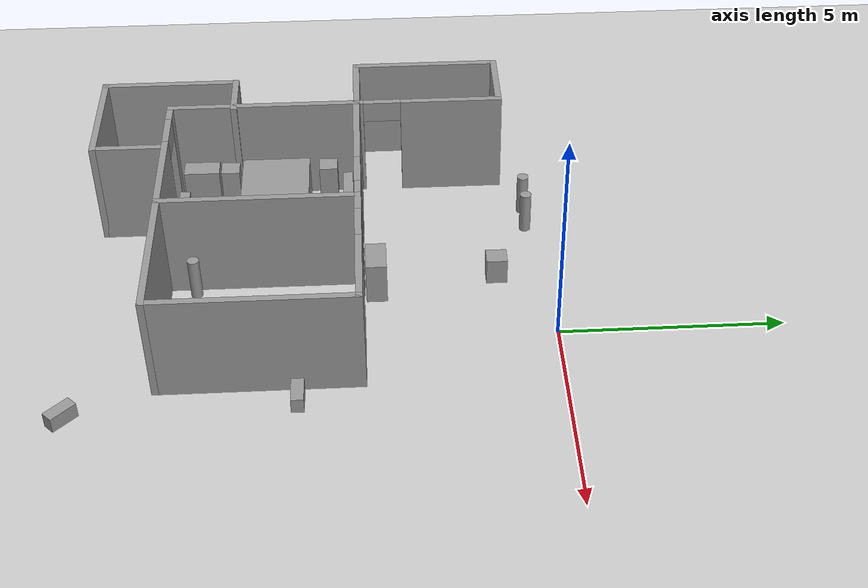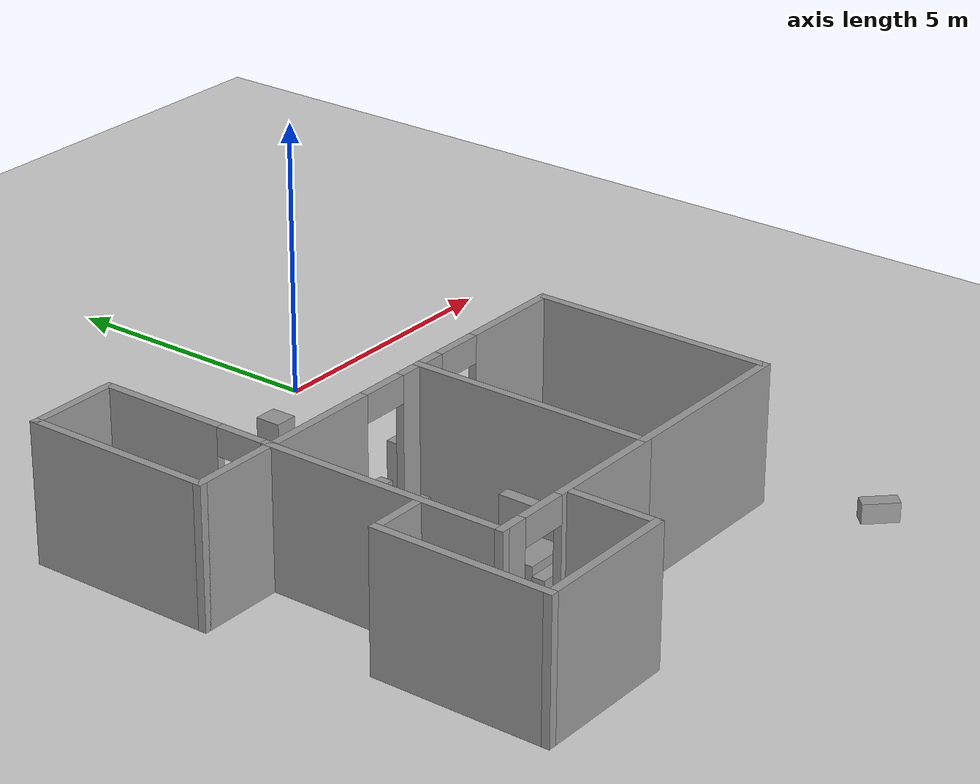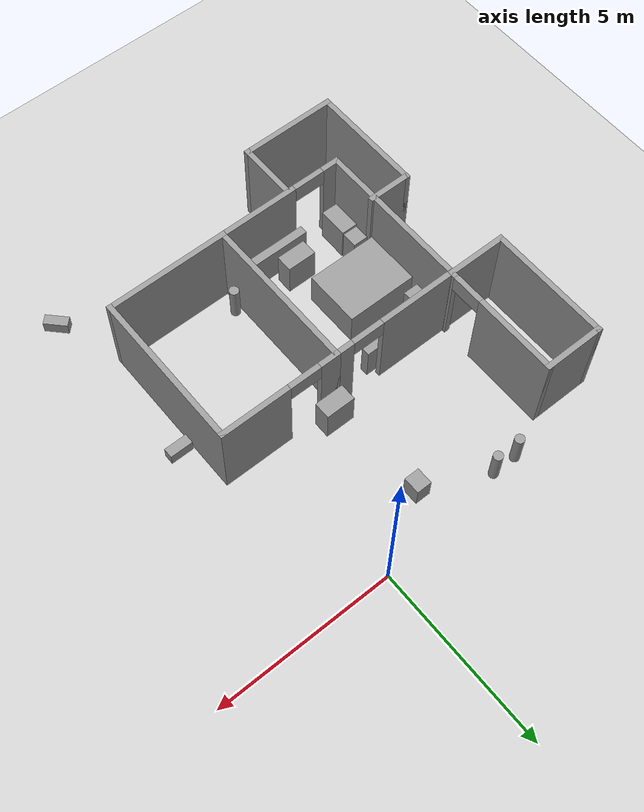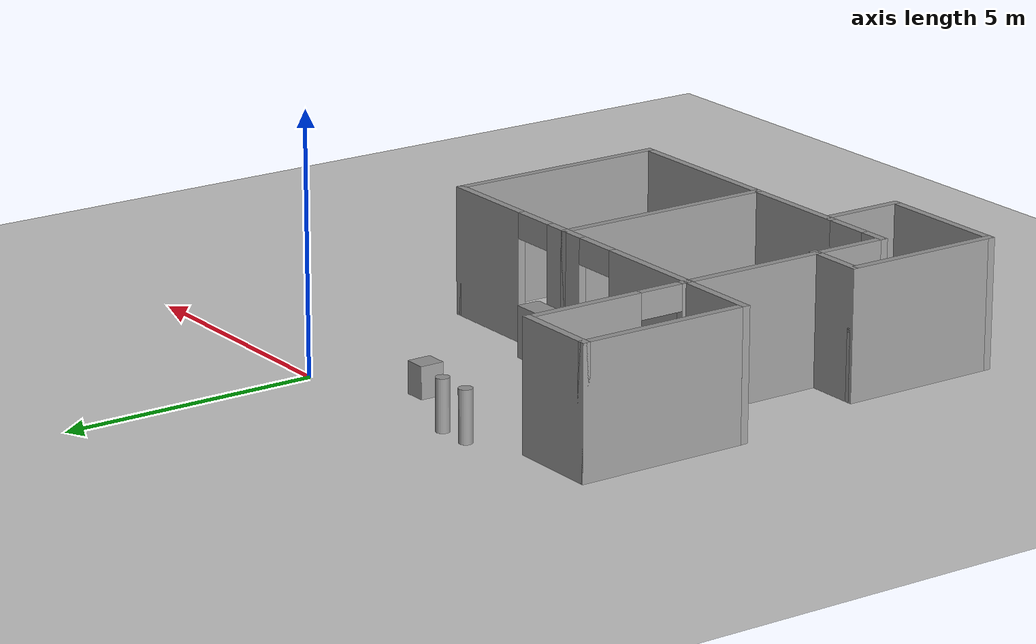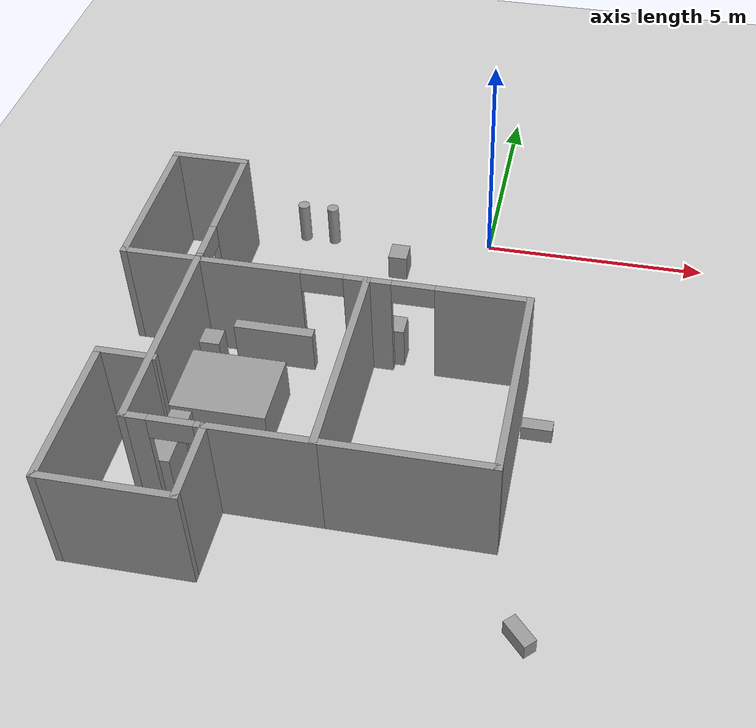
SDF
<sdf version="1.9">
 <world name="default">
  <model name="ground_plane">
   <static>true</static>
   <link name="link">
    <collision name="collision">
     <geometry><plane><normal>0 0 1</normal><size>100 100</size></plane></geometry>
     <surface><friction><ode><mu>100</mu><mu2>50</mu2></ode></friction></surface>
    </collision>
    <visual name="visual">
     <cast_shadows>false</cast_shadows>
     <geometry><plane><normal>0 0 1</normal><size>100 100</size></plane></geometry>
     <material>
      <script><uri>file://media/materials/scripts/gazebo.material</uri><name>Gazebo/Grey</name></script>
     </material>
    </visual>
   </link>
  </model>
  <model name="cma_varanda1">
   <pose>-6.3251799999999996 -2.5931299999999999 0 0 0 0</pose>
   <link name="Wall_0">
    <pose>0.80000000000000004 0 0 0 0 -1.5708</pose>
    <visual name="Wall_0_Visual_0">
     <pose>-0.55249999999999999 0 1.25 0 0 0</pose>
     <geometry><box><size>2.395 0.14999999999999999 2.5</size></box></geometry>
     <material>
      <script><uri>file://media/materials/scripts/gazebo.material</uri><name>Gazebo/Grey</name></script>
      <ambient>1 1 1 1</ambient>
     </material>
    </visual>
    <collision name="Wall_0_Collision_0">
     <geometry><box><size>2.395 0.14999999999999999 2.5</size></box></geometry>
     <pose>-0.55249999999999999 0 1.25 0 0 0</pose>
    </collision>
    <visual name="Wall_0_Visual_1">
     <pose>1.6375 0 1.25 0 0 0</pose>
     <geometry><box><size>0.22500000000000001 0.14999999999999999 2.5</size></box></geometry>
     <material>
      <script><uri>file://media/materials/scripts/gazebo.material</uri><name>Gazebo/Grey</name></script>
      <ambient>1 1 1 1</ambient>
     </material>
    </visual>
    <collision name="Wall_0_Collision_1">
     <geometry><box><size>0.22500000000000001 0.14999999999999999 2.5</size></box></geometry>
     <pose>1.6375 0 1.25 0 0 0</pose>
    </collision>
    <visual name="Wall_0_Visual_2">
     <pose>1.085 0 2.25 0 0 0</pose>
     <geometry><box><size>0.88 0.14999999999999999 0.5</size></box></geometry>
     <material>
      <script><uri>file://media/materials/scripts/gazebo.material</uri><name>Gazebo/Grey</name></script>
      <ambient>1 1 1 1</ambient>
     </material>
    </visual>
    <collision name="Wall_0_Collision_2">
     <geometry><box><size>0.88 0.14999999999999999 0.5</size></box></geometry>
     <pose>1.085 0 2.25 0 0 0</pose>
    </collision>
   </link>
   <link name="Wall_1">
    <collision name="Wall_1_Collision">
     <geometry><box><size>1.75 0.14999999999999999 2.5</size></box></geometry>
     <pose>0 0 1.25 0 0 0</pose>
    </collision>
    <visual name="Wall_1_Visual">
     <pose>0 0 1.25 0 0 0</pose>
     <geometry><box><size>1.75 0.14999999999999999 2.5</size></box></geometry>
     <material>
      <script><uri>file://media/materials/scripts/gazebo.material</uri><name>Gazebo/Grey</name></script>
      <ambient>1 1 1 1</ambient>
     </material>
    </visual>
    <pose>0 -1.675 0 0 0 3.1415899999999999</pose>
   </link>
   <link name="Wall_2">
    <collision name="Wall_2_Collision">
     <geometry><box><size>3.5 0.14999999999999999 2.5</size></box></geometry>
     <pose>0 0 1.25 0 0 0</pose>
    </collision>
    <visual name="Wall_2_Visual">
     <pose>0 0 1.25 0 0 0</pose>
     <geometry><box><size>3.5 0.14999999999999999 2.5</size></box></geometry>
     <material>
      <script><uri>file://media/materials/scripts/gazebo.material</uri><name>Gazebo/Grey</name></script>
      <ambient>1 1 1 1</ambient>
     </material>
    </visual>
    <pose>-0.80000000000000004 0 0 0 0 1.5708</pose>
   </link>
   <link name="Wall_3">
    <collision name="Wall_3_Collision">
     <geometry><box><size>1.75 0.14999999999999999 2.5</size></box></geometry>
     <pose>0 0 1.25 0 0 0</pose>
    </collision>
    <visual name="Wall_3_Visual">
     <pose>0 0 1.25 0 0 0</pose>
     <geometry><box><size>1.75 0.14999999999999999 2.5</size></box></geometry>
     <material>
      <script><uri>file://media/materials/scripts/gazebo.material</uri><name>Gazebo/Grey</name></script>
      <ambient>1 1 1 1</ambient>
     </material>
    </visual>
    <pose>0 1.675 0 0 0 0</pose>
   </link>
   <static>true</static>
  </model>
  <model name="cma_quartos">
   <pose>-2.58169 -7.2645600000000004 0 0 0 0</pose>
   <link name="Wall_0">
    <collision name="Wall_0_Collision">
     <geometry><box><size>4.5 0.14999999999999999 2.5</size></box></geometry>
     <pose>0 0 1.25 0 0 0</pose>
    </collision>
    <visual name="Wall_0_Visual">
     <pose>0 0 1.25 0 0 0</pose>
     <geometry><box><size>4.5 0.14999999999999999 2.5</size></box></geometry>
     <material>
      <script><uri>file://media/materials/scripts/gazebo.material</uri><name>Gazebo/Grey</name></script>
      <ambient>1 1 1 1</ambient>
     </material>
    </visual>
    <pose>0.64500000000000002 0.81000000000000005 0 0 0 -1.5708</pose>
   </link>
   <link name="Wall_1">
    <pose>-1.155 -1.365 0 0 0 3.1415899999999999</pose>
    <visual name="Wall_1_Visual_0">
     <pose>-0.72250000000000003 0 1.25 0 0 0</pose>
     <geometry><box><size>2.3050000000000002 0.14999999999999999 2.5</size></box></geometry>
     <material>
      <script><uri>file://media/materials/scripts/gazebo.material</uri><name>Gazebo/Grey</name></script>
      <ambient>1 1 1 1</ambient>
     </material>
    </visual>
    <collision name="Wall_1_Collision_0">
     <geometry><box><size>2.3050000000000002 0.14999999999999999 2.5</size></box></geometry>
     <pose>-0.72250000000000003 0 1.25 0 0 0</pose>
    </collision>
    <visual name="Wall_1_Visual_1">
     <pose>1.6025 0 1.25 0 0 0</pose>
     <geometry><box><size>0.54500000000000004 0.14999999999999999 2.5</size></box></geometry>
     <material>
      <script><uri>file://media/materials/scripts/gazebo.material</uri><name>Gazebo/Grey</name></script>
      <ambient>1 1 1 1</ambient>
     </material>
    </visual>
    <collision name="Wall_1_Collision_1">
     <geometry><box><size>0.54500000000000004 0.14999999999999999 2.5</size></box></geometry>
     <pose>1.6025 0 1.25 0 0 0</pose>
    </collision>
    <visual name="Wall_1_Visual_2">
     <pose>0.88 0 2.25 0 0 0</pose>
     <geometry><box><size>0.90000000000000002 0.14999999999999999 0.5</size></box></geometry>
     <material>
      <script><uri>file://media/materials/scripts/gazebo.material</uri><name>Gazebo/Grey</name></script>
      <ambient>1 1 1 1</ambient>
     </material>
    </visual>
    <collision name="Wall_1_Collision_2">
     <geometry><box><size>0.90000000000000002 0.14999999999999999 0.5</size></box></geometry>
     <pose>0.88 0 2.25 0 0 0</pose>
    </collision>
   </link>
   <link name="Wall_10">
    <collision name="Wall_10_Collision">
     <geometry><box><size>1.75 0.14999999999999999 2.5</size></box></geometry>
     <pose>0 0 1.25 0 0 0</pose>
    </collision>
    <visual name="Wall_10_Visual">
     <pose>0 0 1.25 0 0 0</pose>
     <geometry><box><size>1.75 0.14999999999999999 2.5</size></box></geometry>
     <material>
      <script><uri>file://media/materials/scripts/gazebo.material</uri><name>Gazebo/Grey</name></script>
      <ambient>1 1 1 1</ambient>
     </material>
    </visual>
    <pose>-1.395 -2.1850000000000001 0 0 0 -1.5708</pose>
   </link>
   <link name="Wall_11">
    <collision name="Wall_11_Collision">
     <geometry><box><size>2.75 0.14999999999999999 2.5</size></box></geometry>
     <pose>0 0 1.25 0 0 0</pose>
    </collision>
    <visual name="Wall_11_Visual">
     <pose>0 0 1.25 0 0 0</pose>
     <geometry><box><size>2.75 0.14999999999999999 2.5</size></box></geometry>
     <material>
      <script><uri>file://media/materials/scripts/gazebo.material</uri><name>Gazebo/Grey</name></script>
      <ambient>1 1 1 1</ambient>
     </material>
    </visual>
    <pose>-2.6949999999999998 -2.9849999999999999 0 0 0 3.1415899999999999</pose>
   </link>
   <link name="Wall_12">
    <collision name="Wall_12_Collision">
     <geometry><box><size>3.25 0.14999999999999999 2.5</size></box></geometry>
     <pose>0 0 1.25 0 0 0</pose>
    </collision>
    <visual name="Wall_12_Visual">
     <pose>0 0 1.25 0 0 0</pose>
     <geometry><box><size>3.25 0.14999999999999999 2.5</size></box></geometry>
     <material>
      <script><uri>file://media/materials/scripts/gazebo.material</uri><name>Gazebo/Grey</name></script>
      <ambient>1 1 1 1</ambient>
     </material>
    </visual>
    <pose>-3.9950000000000001 -1.4350000000000001 0 0 0 1.5708</pose>
   </link>
   <link name="Wall_13">
    <collision name="Wall_13_Collision">
     <geometry><box><size>1.25 0.14999999999999999 2.5</size></box></geometry>
     <pose>0 0 1.25 0 0 0</pose>
    </collision>
    <visual name="Wall_13_Visual">
     <pose>0 0 1.25 0 0 0</pose>
     <geometry><box><size>1.25 0.14999999999999999 2.5</size></box></geometry>
     <material>
      <script><uri>file://media/materials/scripts/gazebo.material</uri><name>Gazebo/Grey</name></script>
      <ambient>1 1 1 1</ambient>
     </material>
    </visual>
    <pose>-3.4449999999999998 0.115 0 0 0 0</pose>
   </link>
   <link name="Wall_2">
    <collision name="Wall_2_Collision">
     <geometry><box><size>4.5 0.14999999999999999 2.5</size></box></geometry>
     <pose>0 0 1.25 0 0 0</pose>
    </collision>
    <visual name="Wall_2_Visual">
     <pose>0 0 1.25 0 0 0</pose>
     <geometry><box><size>4.5 0.14999999999999999 2.5</size></box></geometry>
     <material>
      <script><uri>file://media/materials/scripts/gazebo.material</uri><name>Gazebo/Grey</name></script>
      <ambient>1 1 1 1</ambient>
     </material>
    </visual>
    <pose>-2.9550000000000001 0.81000000000000005 0 0 0 1.5708</pose>
   </link>
   <link name="Wall_3">
    <pose>-1.155 2.9849999999999999 0 0 0 0</pose>
    <visual name="Wall_3_Visual_0">
     <pose>-0.73250000000000004 0 1.25 0 0 0</pose>
     <geometry><box><size>2.2850000000000001 0.14999999999999999 2.5</size></box></geometry>
     <material>
      <script><uri>file://media/materials/scripts/gazebo.material</uri><name>Gazebo/Grey</name></script>
      <ambient>1 1 1 1</ambient>
     </material>
    </visual>
    <collision name="Wall_3_Collision_0">
     <geometry><box><size>2.2850000000000001 0.14999999999999999 2.5</size></box></geometry>
     <pose>-0.73250000000000004 0 1.25 0 0 0</pose>
    </collision>
    <visual name="Wall_3_Visual_1">
     <pose>1.5925 0 1.25 0 0 0</pose>
     <geometry><box><size>0.56499999999999995 0.14999999999999999 2.5</size></box></geometry>
     <material>
      <script><uri>file://media/materials/scripts/gazebo.material</uri><name>Gazebo/Grey</name></script>
      <ambient>1 1 1 1</ambient>
     </material>
    </visual>
    <collision name="Wall_3_Collision_1">
     <geometry><box><size>0.56499999999999995 0.14999999999999999 2.5</size></box></geometry>
     <pose>1.5925 0 1.25 0 0 0</pose>
    </collision>
    <visual name="Wall_3_Visual_2">
     <pose>0.85999999999999999 0 2.25 0 0 0</pose>
     <geometry><box><size>0.90000000000000002 0.14999999999999999 0.5</size></box></geometry>
     <material>
      <script><uri>file://media/materials/scripts/gazebo.material</uri><name>Gazebo/Grey</name></script>
      <ambient>1 1 1 1</ambient>
     </material>
    </visual>
    <collision name="Wall_3_Collision_2">
     <geometry><box><size>0.90000000000000002 0.14999999999999999 0.5</size></box></geometry>
     <pose>0.85999999999999999 0 2.25 0 0 0</pose>
    </collision>
   </link>
   <link name="Wall_6">
    <pose>2.3199999999999998 2.9849999999999999 0 0 0 0</pose>
    <visual name="Wall_6_Visual_0">
     <pose>-1.4575 0 1.25 0 0 0</pose>
     <geometry><box><size>0.58499999999999996 0.14999999999999999 2.5</size></box></geometry>
     <material>
      <script><uri>file://media/materials/scripts/gazebo.material</uri><name>Gazebo/Grey</name></script>
      <ambient>1 1 1 1</ambient>
     </material>
    </visual>
    <collision name="Wall_6_Collision_0">
     <geometry><box><size>0.58499999999999996 0.14999999999999999 2.5</size></box></geometry>
     <pose>-1.4575 0 1.25 0 0 0</pose>
    </collision>
    <visual name="Wall_6_Visual_1">
     <pose>0.74250000000000005 0 1.25 0 0 0</pose>
     <geometry><box><size>2.0150000000000001 0.14999999999999999 2.5</size></box></geometry>
     <material>
      <script><uri>file://media/materials/scripts/gazebo.material</uri><name>Gazebo/Grey</name></script>
      <ambient>1 1 1 1</ambient>
     </material>
    </visual>
    <collision name="Wall_6_Collision_1">
     <geometry><box><size>2.0150000000000001 0.14999999999999999 2.5</size></box></geometry>
     <pose>0.74250000000000005 0 1.25 0 0 0</pose>
    </collision>
    <visual name="Wall_6_Visual_2">
     <pose>-0.71499999999999997 0 2.25 0 0 0</pose>
     <geometry><box><size>0.90000000000000002 0.14999999999999999 0.5</size></box></geometry>
     <material>
      <script><uri>file://media/materials/scripts/gazebo.material</uri><name>Gazebo/Grey</name></script>
      <ambient>1 1 1 1</ambient>
     </material>
    </visual>
    <collision name="Wall_6_Collision_2">
     <geometry><box><size>0.90000000000000002 0.14999999999999999 0.5</size></box></geometry>
     <pose>-0.71499999999999997 0 2.25 0 0 0</pose>
    </collision>
   </link>
   <link name="Wall_7">
    <collision name="Wall_7_Collision">
     <geometry><box><size>4.5 0.14999999999999999 2.5</size></box></geometry>
     <pose>0 0 1.25 0 0 0</pose>
    </collision>
    <visual name="Wall_7_Visual">
     <pose>0 0 1.25 0 0 0</pose>
     <geometry><box><size>4.5 0.14999999999999999 2.5</size></box></geometry>
     <material>
      <script><uri>file://media/materials/scripts/gazebo.material</uri><name>Gazebo/Grey</name></script>
      <ambient>1 1 1 1</ambient>
     </material>
    </visual>
    <pose>3.9950000000000001 0.81000000000000005 0 0 0 -1.5708</pose>
   </link>
   <link name="Wall_8">
    <collision name="Wall_8_Collision">
     <geometry><box><size>3.5 0.14999999999999999 2.5</size></box></geometry>
     <pose>0 0 1.25 0 0 0</pose>
    </collision>
    <visual name="Wall_8_Visual">
     <pose>0 0 1.25 0 0 0</pose>
     <geometry><box><size>3.5 0.14999999999999999 2.5</size></box></geometry>
     <material>
      <script><uri>file://media/materials/scripts/gazebo.material</uri><name>Gazebo/Grey</name></script>
      <ambient>1 1 1 1</ambient>
     </material>
    </visual>
    <pose>2.3199999999999998 -1.365 0 0 0 3.1415899999999999</pose>
   </link>
   <static>true</static>
  </model>
  <model name="cma_bau_s">
   <link name="link_1">
    <pose>0.109594 0.27229300000000001 0 0 0 0</pose>
    <inertial>
     <mass>0.12547900000000001</mass>
     <inertia>
      <ixx>0.0064194300000000003</ixx>
      <ixy>0</ixy>
      <ixz>0</ixz>
      <iyy>0.0059753999999999996</iyy>
      <iyz>0</iyz>
      <izz>0.0042208499999999999</izz>
     </inertia>
    </inertial>
    <visual name="visual">
     <geometry><box><size>0.42496400000000001 0.47228300000000001 0.62511799999999995</size></box></geometry>
     <material>
      <lighting>true</lighting>
      <script><uri>file://media/materials/scripts/gazebo.material</uri><name>Gazebo/Grey</name></script>
      <ambient>0.300000012 0.300000012 0.300000012 1</ambient>
      <diffuse>0.699999988 0.699999988 0.699999988 1</diffuse>
      <specular>0.00999999978 0.00999999978 0.00999999978 1</specular>
      <emissive>0 0 0 1</emissive>
     </material>
    </visual>
    <collision name="collision">
     <geometry><box><size>0.42496400000000001 0.47228300000000001 0.62511799999999995</size></box></geometry>
     <surface>
      <friction>
       <ode><mu>1</mu><mu2>1</mu2><fdir1>0 0 0</fdir1><slip1>0</slip1><slip2>0</slip2></ode>
       <torsional>
        <coefficient>1</coefficient>
        <patch_radius>0</patch_radius>
        <surface_radius>0</surface_radius>
        <use_patch_radius>true</use_patch_radius>
        <ode><slip>0</slip></ode>
       </torsional>
      </friction>
      <bounce><restitution_coefficient>0</restitution_coefficient><threshold>1000000</threshold></bounce>
      <contact>
       <collide_without_contact>false</collide_without_contact>
       <collide_without_contact_bitmask>1</collide_without_contact_bitmask>
       <collide_bitmask>1</collide_bitmask>
       <ode>
        <soft_cfm>0</soft_cfm>
        <soft_erp>0.20000000000000001</soft_erp>
        <kp>10000000000000</kp>
        <kd>1</kd>
        <max_vel>0.01</max_vel>
        <min_depth>0</min_depth>
       </ode>
       <bullet>
        <split_impulse>true</split_impulse>
        <split_impulse_penetration_threshold>-0.01</split_impulse_penetration_threshold>
        <soft_cfm>0</soft_cfm>
        <soft_erp>0.20000000000000001</soft_erp>
        <kp>10000000000000</kp>
        <kd>1</kd>
       </bullet>
      </contact>
     </surface>
    </collision>
   </link>
   <static>false</static>
   <pose>-2.0428799999999998 -1.4857199999999999 0.31256 -3.999999999999999e-06 1.2000000000000002e-05 0.00026099999999999995</pose>
  </model>
  <model name="cma_armario_s">
   <link name="link_1">
    <pose>-1.9999999999999999e-06 -3.0000000000000001e-06 0 0 0 0</pose>
    <inertial>
     <mass>0.39015899999999998</mass>
     <inertia>
      <ixx>0.039647000000000002</ixx>
      <ixy>0</ixy>
      <ixz>0</ixz>
      <iyy>0.055070800000000003</iyy>
      <iyz>0</iyz>
      <izz>0.029691200000000001</izz>
     </inertia>
    </inertial>
    <visual name="visual">
     <geometry><box><size>0.83294199999999996 0.46839700000000001 1</size></box></geometry>
     <material>
      <lighting>true</lighting>
      <script><uri>file://media/materials/scripts/gazebo.material</uri><name>Gazebo/Grey</name></script>
      <ambient>0.300000012 0.300000012 0.300000012 1</ambient>
      <diffuse>0.699999988 0.699999988 0.699999988 1</diffuse>
      <specular>0.00999999978 0.00999999978 0.00999999978 1</specular>
      <emissive>0 0 0 1</emissive>
     </material>
    </visual>
    <collision name="collision">
     <geometry><box><size>0.83294199999999996 0.46839700000000001 1</size></box></geometry>
     <surface>
      <friction>
       <ode><mu>1</mu><mu2>1</mu2><fdir1>0 0 0</fdir1><slip1>0</slip1><slip2>0</slip2></ode>
       <torsional>
        <coefficient>1</coefficient>
        <patch_radius>0</patch_radius>
        <surface_radius>0</surface_radius>
        <use_patch_radius>true</use_patch_radius>
        <ode><slip>0</slip></ode>
       </torsional>
      </friction>
      <bounce><restitution_coefficient>0</restitution_coefficient><threshold>1000000</threshold></bounce>
      <contact>
       <collide_without_contact>false</collide_without_contact>
       <collide_without_contact_bitmask>1</collide_without_contact_bitmask>
       <collide_bitmask>1</collide_bitmask>
       <ode>
        <soft_cfm>0</soft_cfm>
        <soft_erp>0.20000000000000001</soft_erp>
        <kp>10000000000000</kp>
        <kd>1</kd>
        <max_vel>0.01</max_vel>
        <min_depth>0</min_depth>
       </ode>
       <bullet>
        <split_impulse>true</split_impulse>
        <split_impulse_penetration_threshold>-0.01</split_impulse_penetration_threshold>
        <soft_cfm>0</soft_cfm>
        <soft_erp>0.20000000000000001</soft_erp>
        <kp>10000000000000</kp>
        <kd>1</kd>
       </bullet>
      </contact>
     </surface>
    </collision>
   </link>
   <static>false</static>
   <pose>-1.6384399999999999 -3.9380099999999998 0.5 0 0 9.7999999999999997e-05</pose>
  </model>
  <model name="cma_cama_c">
   <link name="link_0">
    <pose>5.0000000000000004e-06 -3.9999999999999998e-06 0 0 0 0</pose>
    <inertial>
     <mass>3.1835800000000001</mass>
     <inertia>
      <ixx>0.93486199999999997</ixx>
      <ixy>0</ixy>
      <ixz>0</ixz>
      <iyy>1.3306899999999999</iyy>
      <iyz>0</iyz>
      <izz>1.7349600000000001</izz>
     </inertia>
    </inertial>
    <visual name="visual">
     <geometry><box><size>2.0039400000000001 1.58866 1</size></box></geometry>
     <material>
      <lighting>true</lighting>
      <script><uri>file://media/materials/scripts/gazebo.material</uri><name>Gazebo/Grey</name></script>
      <ambient>0.300000012 0.300000012 0.300000012 1</ambient>
      <diffuse>0.699999988 0.699999988 0.699999988 1</diffuse>
      <specular>0.00999999978 0.00999999978 0.00999999978 1</specular>
      <emissive>0 0 0 1</emissive>
     </material>
    </visual>
    <collision name="collision">
     <geometry><box><size>2.0039400000000001 1.58866 1</size></box></geometry>
     <surface>
      <friction>
       <ode><mu>1</mu><mu2>1</mu2><fdir1>0 0 0</fdir1><slip1>0</slip1><slip2>0</slip2></ode>
       <torsional>
        <coefficient>1</coefficient>
        <patch_radius>0</patch_radius>
        <surface_radius>0</surface_radius>
        <use_patch_radius>true</use_patch_radius>
        <ode><slip>0</slip></ode>
       </torsional>
      </friction>
      <bounce><restitution_coefficient>0</restitution_coefficient><threshold>1000000</threshold></bounce>
      <contact>
       <collide_without_contact>false</collide_without_contact>
       <collide_without_contact_bitmask>1</collide_without_contact_bitmask>
       <collide_bitmask>1</collide_bitmask>
       <ode>
        <soft_cfm>0</soft_cfm>
        <soft_erp>0.20000000000000001</soft_erp>
        <kp>10000000000000</kp>
        <kd>1</kd>
        <max_vel>0.01</max_vel>
        <min_depth>0</min_depth>
       </ode>
       <bullet>
        <split_impulse>true</split_impulse>
        <split_impulse_penetration_threshold>-0.01</split_impulse_penetration_threshold>
        <soft_cfm>0</soft_cfm>
        <soft_erp>0.20000000000000001</soft_erp>
        <kp>10000000000000</kp>
        <kd>1</kd>
       </bullet>
      </contact>
     </surface>
    </collision>
   </link>
   <static>false</static>
   <pose>-4.43933 -6.2481600000000004 0.5 0 0 0</pose>
  </model>
  <model name="cma_armario_0">
   <link name="link_0">
    <pose>1.3215699999999999 0.88517800000000002 0.5 0 0 0</pose>
    <inertial>
     <mass>0.40237600000000001</mass>
     <inertia>
      <ixx>0.0353686</ixx>
      <ixy>0</ixy>
      <ixz>0</ixz>
      <iyy>0.13261600000000001</iyy>
      <iyz>0</iyz>
      <izz>0.100922</izz>
     </inertia>
    </inertial>
    <visual name="visual">
     <geometry><box><size>1.7187699999999999 0.234069 1</size></box></geometry>
     <material>
      <lighting>true</lighting>
      <script><uri>file://media/materials/scripts/gazebo.material</uri><name>Gazebo/Grey</name></script>
      <ambient>0.300000012 0.300000012 0.300000012 1</ambient>
      <diffuse>0.699999988 0.699999988 0.699999988 1</diffuse>
      <specular>0.00999999978 0.00999999978 0.00999999978 1</specular>
      <emissive>0 0 0 1</emissive>
     </material>
    </visual>
    <collision name="collision">
     <geometry><box><size>1.7187699999999999 0.234069 1</size></box></geometry>
     <surface>
      <friction>
       <ode><mu>1</mu><mu2>1</mu2><fdir1>0 0 0</fdir1><slip1>0</slip1><slip2>0</slip2></ode>
       <torsional>
        <coefficient>1</coefficient>
        <patch_radius>0</patch_radius>
        <surface_radius>0</surface_radius>
        <use_patch_radius>true</use_patch_radius>
        <ode><slip>0</slip></ode>
       </torsional>
      </friction>
      <bounce><restitution_coefficient>0</restitution_coefficient><threshold>1000000</threshold></bounce>
      <contact>
       <collide_without_contact>false</collide_without_contact>
       <collide_without_contact_bitmask>1</collide_without_contact_bitmask>
       <collide_bitmask>1</collide_bitmask>
       <ode>
        <soft_cfm>0</soft_cfm>
        <soft_erp>0.20000000000000001</soft_erp>
        <kp>10000000000000</kp>
        <kd>1</kd>
        <max_vel>0.01</max_vel>
        <min_depth>0</min_depth>
       </ode>
       <bullet>
        <split_impulse>true</split_impulse>
        <split_impulse_penetration_threshold>-0.01</split_impulse_penetration_threshold>
        <soft_cfm>0</soft_cfm>
        <soft_erp>0.20000000000000001</soft_erp>
        <kp>10000000000000</kp>
        <kd>1</kd>
       </bullet>
      </contact>
     </surface>
    </collision>
   </link>
   <static>false</static>
   <pose>-5.2777700000000003 -5.4180099999999998 0 0 0 -0.0015620000000000002</pose>
  </model>
  <model name="cma_gaveteiro_pequeno_1">
   <link name="link_0">
    <pose>0.25617400000000001 1.2505500000000001 0.5 0 0 0</pose>
    <inertial>
     <mass>0.18718599999999999</mass>
     <inertia>
      <ixx>0.018509999999999999</ixx>
      <ixy>0</ixy>
      <ixz>0</ixz>
      <iyy>0.018527600000000002</iyy>
      <iyz>0</iyz>
      <izz>0.00583981</izz>
     </inertia>
    </inertial>
    <visual name="visual">
     <geometry><box><size>0.43331700000000001 0.432002 1</size></box></geometry>
     <material>
      <lighting>true</lighting>
      <script><uri>file://media/materials/scripts/gazebo.material</uri><name>Gazebo/Grey</name></script>
      <ambient>0.300000012 0.300000012 0.300000012 1</ambient>
      <diffuse>0.699999988 0.699999988 0.699999988 1</diffuse>
      <specular>0.00999999978 0.00999999978 0.00999999978 1</specular>
      <emissive>0 0 0 1</emissive>
     </material>
    </visual>
    <collision name="collision">
     <geometry><box><size>0.43331700000000001 0.432002 1</size></box></geometry>
     <surface>
      <friction>
       <ode><mu>1</mu><mu2>1</mu2><fdir1>0 0 0</fdir1><slip1>0</slip1><slip2>0</slip2></ode>
       <torsional>
        <coefficient>1</coefficient>
        <patch_radius>0</patch_radius>
        <surface_radius>0</surface_radius>
        <use_patch_radius>true</use_patch_radius>
        <ode><slip>0</slip></ode>
       </torsional>
      </friction>
      <bounce><restitution_coefficient>0</restitution_coefficient><threshold>1000000</threshold></bounce>
      <contact>
       <collide_without_contact>false</collide_without_contact>
       <collide_without_contact_bitmask>1</collide_without_contact_bitmask>
       <collide_bitmask>1</collide_bitmask>
       <ode>
        <soft_cfm>0</soft_cfm>
        <soft_erp>0.20000000000000001</soft_erp>
        <kp>10000000000000</kp>
        <kd>1</kd>
        <max_vel>0.01</max_vel>
        <min_depth>0</min_depth>
       </ode>
       <bullet>
        <split_impulse>true</split_impulse>
        <split_impulse_penetration_threshold>-0.01</split_impulse_penetration_threshold>
        <soft_cfm>0</soft_cfm>
        <soft_erp>0.20000000000000001</soft_erp>
        <kp>10000000000000</kp>
        <kd>1</kd>
       </bullet>
      </contact>
     </surface>
    </collision>
   </link>
   <static>false</static>
   <pose>-5.4309099999999999 -6.2550800000000004 -1.2e-05 8.0000000000000013e-06 0 1.8000000000000004e-05</pose>
  </model>
  <model name="cma_armario_s_0">
   <link name="link_1">
    <pose>-1.9999999999999999e-06 -3.0000000000000001e-06 0 0 0 0</pose>
    <inertial>
     <mass>0.39015899999999998</mass>
     <inertia>
      <ixx>0.039647000000000002</ixx>
      <ixy>0</ixy>
      <ixz>0</ixz>
      <iyy>0.055070800000000003</iyy>
      <iyz>0</iyz>
      <izz>0.029691200000000001</izz>
     </inertia>
    </inertial>
    <visual name="visual">
     <geometry><box><size>0.83294199999999996 0.46839700000000001 1</size></box></geometry>
     <material>
      <lighting>true</lighting>
      <script><uri>file://media/materials/scripts/gazebo.material</uri><name>Gazebo/Grey</name></script>
      <ambient>0.300000012 0.300000012 0.300000012 1</ambient>
      <diffuse>0.699999988 0.699999988 0.699999988 1</diffuse>
      <specular>0.00999999978 0.00999999978 0.00999999978 1</specular>
      <emissive>0 0 0 1</emissive>
     </material>
    </visual>
    <collision name="collision">
     <geometry><box><size>0.83294199999999996 0.46839700000000001 1</size></box></geometry>
     <surface>
      <friction>
       <ode><mu>1</mu><mu2>1</mu2><fdir1>0 0 0</fdir1><slip1>0</slip1><slip2>0</slip2></ode>
       <torsional>
        <coefficient>1</coefficient>
        <patch_radius>0</patch_radius>
        <surface_radius>0</surface_radius>
        <use_patch_radius>true</use_patch_radius>
        <ode><slip>0</slip></ode>
       </torsional>
      </friction>
      <bounce><restitution_coefficient>0</restitution_coefficient><threshold>1000000</threshold></bounce>
      <contact>
       <collide_without_contact>false</collide_without_contact>
       <collide_without_contact_bitmask>1</collide_without_contact_bitmask>
       <collide_bitmask>1</collide_bitmask>
       <ode>
        <soft_cfm>0</soft_cfm>
        <soft_erp>0.20000000000000001</soft_erp>
        <kp>10000000000000</kp>
        <kd>1</kd>
        <max_vel>0.01</max_vel>
        <min_depth>0</min_depth>
       </ode>
       <bullet>
        <split_impulse>true</split_impulse>
        <split_impulse_penetration_threshold>-0.01</split_impulse_penetration_threshold>
        <soft_cfm>0</soft_cfm>
        <soft_erp>0.20000000000000001</soft_erp>
        <kp>10000000000000</kp>
        <kd>1</kd>
       </bullet>
      </contact>
     </surface>
    </collision>
   </link>
   <static>false</static>
   <pose>-5.1684299999999999 -8.01553 0.5 0 0 -1.5749599999999997</pose>
  </model>
  <model name="cma_gaveteiro_pequeno_2">
   <link name="link_0">
    <pose>0.25617400000000001 1.2505500000000001 0.5 0 0 0</pose>
    <inertial>
     <mass>0.18718599999999999</mass>
     <inertia>
      <ixx>0.018509999999999999</ixx>
      <ixy>0</ixy>
      <ixz>0</ixz>
      <iyy>0.018527600000000002</iyy>
      <iyz>0</iyz>
      <izz>0.00583981</izz>
     </inertia>
    </inertial>
    <visual name="visual">
     <geometry><box><size>0.43331700000000001 0.432002 1</size></box></geometry>
     <material>
      <lighting>true</lighting>
      <script><uri>file://media/materials/scripts/gazebo.material</uri><name>Gazebo/Grey</name></script>
      <ambient>0.300000012 0.300000012 0.300000012 1</ambient>
      <diffuse>0.699999988 0.699999988 0.699999988 1</diffuse>
      <specular>0.00999999978 0.00999999978 0.00999999978 1</specular>
      <emissive>0 0 0 1</emissive>
     </material>
    </visual>
    <collision name="collision">
     <geometry><box><size>0.43331700000000001 0.432002 1</size></box></geometry>
     <surface>
      <friction>
       <ode><mu>1</mu><mu2>1</mu2><fdir1>0 0 0</fdir1><slip1>0</slip1><slip2>0</slip2></ode>
       <torsional>
        <coefficient>1</coefficient>
        <patch_radius>0</patch_radius>
        <surface_radius>0</surface_radius>
        <use_patch_radius>true</use_patch_radius>
        <ode><slip>0</slip></ode>
       </torsional>
      </friction>
      <bounce><restitution_coefficient>0</restitution_coefficient><threshold>1000000</threshold></bounce>
      <contact>
       <collide_without_contact>false</collide_without_contact>
       <collide_without_contact_bitmask>1</collide_without_contact_bitmask>
       <collide_bitmask>1</collide_bitmask>
       <ode>
        <soft_cfm>0</soft_cfm>
        <soft_erp>0.20000000000000001</soft_erp>
        <kp>10000000000000</kp>
        <kd>1</kd>
        <max_vel>0.01</max_vel>
        <min_depth>0</min_depth>
       </ode>
       <bullet>
        <split_impulse>true</split_impulse>
        <split_impulse_penetration_threshold>-0.01</split_impulse_penetration_threshold>
        <soft_cfm>0</soft_cfm>
        <soft_erp>0.20000000000000001</soft_erp>
        <kp>10000000000000</kp>
        <kd>1</kd>
       </bullet>
      </contact>
     </surface>
    </collision>
   </link>
   <static>false</static>
   <pose>-5.3916300000000001 -8.5855200000000007 3.0000000000000001e-06 2.5849394142915424e-26 6.999999999999999e-06 -3.9000000000000006e-05</pose>
  </model>
  <model name="cma_armario_s_1">
   <link name="link_1">
    <pose>-1.9999999999999999e-06 -3.0000000000000001e-06 0 0 0 0</pose>
    <inertial>
     <mass>0.39015899999999998</mass>
     <inertia>
      <ixx>0.039647000000000002</ixx>
      <ixy>0</ixy>
      <ixz>0</ixz>
      <iyy>0.055070800000000003</iyy>
      <iyz>0</iyz>
      <izz>0.029691200000000001</izz>
     </inertia>
    </inertial>
    <visual name="visual">
     <geometry><box><size>0.83294199999999996 0.46839700000000001 1</size></box></geometry>
     <material>
      <lighting>true</lighting>
      <script><uri>file://media/materials/scripts/gazebo.material</uri><name>Gazebo/Grey</name></script>
      <ambient>0.300000012 0.300000012 0.300000012 1</ambient>
      <diffuse>0.699999988 0.699999988 0.699999988 1</diffuse>
      <specular>0.00999999978 0.00999999978 0.00999999978 1</specular>
      <emissive>0 0 0 1</emissive>
     </material>
    </visual>
    <collision name="collision">
     <geometry><box><size>0.83294199999999996 0.46839700000000001 1</size></box></geometry>
     <surface>
      <friction>
       <ode><mu>1</mu><mu2>1</mu2><fdir1>0 0 0</fdir1><slip1>0</slip1><slip2>0</slip2></ode>
       <torsional>
        <coefficient>1</coefficient>
        <patch_radius>0</patch_radius>
        <surface_radius>0</surface_radius>
        <use_patch_radius>true</use_patch_radius>
        <ode><slip>0</slip></ode>
       </torsional>
      </friction>
      <bounce><restitution_coefficient>0</restitution_coefficient><threshold>1000000</threshold></bounce>
      <contact>
       <collide_without_contact>false</collide_without_contact>
       <collide_without_contact_bitmask>1</collide_without_contact_bitmask>
       <collide_bitmask>1</collide_bitmask>
       <ode>
        <soft_cfm>0</soft_cfm>
        <soft_erp>0.20000000000000001</soft_erp>
        <kp>10000000000000</kp>
        <kd>1</kd>
        <max_vel>0.01</max_vel>
        <min_depth>0</min_depth>
       </ode>
       <bullet>
        <split_impulse>true</split_impulse>
        <split_impulse_penetration_threshold>-0.01</split_impulse_penetration_threshold>
        <soft_cfm>0</soft_cfm>
        <soft_erp>0.20000000000000001</soft_erp>
        <kp>10000000000000</kp>
        <kd>1</kd>
       </bullet>
      </contact>
     </surface>
    </collision>
   </link>
   <static>false</static>
   <pose>-3.5794899999999998 -7.8237399999999999 0.5 0 0 0.00045200000000000004</pose>
  </model>
  <model name="cma_armario_1">
   <link name="link_0">
    <pose>1.3215699999999999 0.88517800000000002 0.5 0 0 0</pose>
    <inertial>
     <mass>0.40237600000000001</mass>
     <inertia>
      <ixx>0.0353686</ixx>
      <ixy>0</ixy>
      <ixz>0</ixz>
      <iyy>0.13261600000000001</iyy>
      <iyz>0</iyz>
      <izz>0.100922</izz>
     </inertia>
    </inertial>
    <visual name="visual">
     <geometry><box><size>1.7187699999999999 0.234069 1</size></box></geometry>
     <material>
      <lighting>true</lighting>
      <script><uri>file://media/materials/scripts/gazebo.material</uri><name>Gazebo/Grey</name></script>
      <ambient>0.300000012 0.300000012 0.300000012 1</ambient>
      <diffuse>0.699999988 0.699999988 0.699999988 1</diffuse>
      <specular>0.00999999978 0.00999999978 0.00999999978 1</specular>
      <emissive>0 0 0 1</emissive>
     </material>
    </visual>
    <collision name="collision">
     <geometry><box><size>1.7187699999999999 0.234069 1</size></box></geometry>
     <surface>
      <friction>
       <ode><mu>1</mu><mu2>1</mu2><fdir1>0 0 0</fdir1><slip1>0</slip1><slip2>0</slip2></ode>
       <torsional>
        <coefficient>1</coefficient>
        <patch_radius>0</patch_radius>
        <surface_radius>0</surface_radius>
        <use_patch_radius>true</use_patch_radius>
        <ode><slip>0</slip></ode>
       </torsional>
      </friction>
      <bounce><restitution_coefficient>0</restitution_coefficient><threshold>1000000</threshold></bounce>
      <contact>
       <collide_without_contact>false</collide_without_contact>
       <collide_without_contact_bitmask>1</collide_without_contact_bitmask>
       <collide_bitmask>1</collide_bitmask>
       <ode>
        <soft_cfm>0</soft_cfm>
        <soft_erp>0.20000000000000001</soft_erp>
        <kp>10000000000000</kp>
        <kd>1</kd>
        <max_vel>0.01</max_vel>
        <min_depth>0</min_depth>
       </ode>
       <bullet>
        <split_impulse>true</split_impulse>
        <split_impulse_penetration_threshold>-0.01</split_impulse_penetration_threshold>
        <soft_cfm>0</soft_cfm>
        <soft_erp>0.20000000000000001</soft_erp>
        <kp>10000000000000</kp>
        <kd>1</kd>
       </bullet>
      </contact>
     </surface>
    </collision>
   </link>
   <static>false</static>
   <pose>-4.7005999999999997 -9.2264300000000006 0 0 0 -0.0015620000000000002</pose>
  </model>
  <model name="cma_armario_2_clone">
   <link name="link_0">
    <pose>1.3215699999999999 0.88517800000000002 0.5 0 0 0</pose>
    <inertial>
     <mass>0.40237600000000001</mass>
     <inertia>
      <ixx>0.0353686</ixx>
      <ixy>0</ixy>
      <ixz>0</ixz>
      <iyy>0.13261600000000001</iyy>
      <iyz>0</iyz>
      <izz>0.100922</izz>
     </inertia>
    </inertial>
    <visual name="visual">
     <geometry><box><size>1.7187699999999999 0.234069 1</size></box></geometry>
     <material>
      <lighting>true</lighting>
      <script><uri>file://media/materials/scripts/gazebo.material</uri><name>Gazebo/Grey</name></script>
      <ambient>0.300000012 0.300000012 0.300000012 1</ambient>
      <diffuse>0.699999988 0.699999988 0.699999988 1</diffuse>
      <specular>0.00999999978 0.00999999978 0.00999999978 1</specular>
      <emissive>0 0 0 1</emissive>
     </material>
    </visual>
    <collision name="collision">
     <geometry><box><size>1.7187699999999999 0.234069 1</size></box></geometry>
     <surface>
      <friction>
       <ode><mu>1</mu><mu2>1</mu2><fdir1>0 0 0</fdir1><slip1>0</slip1><slip2>0</slip2></ode>
       <torsional>
        <coefficient>1</coefficient>
        <patch_radius>0</patch_radius>
        <surface_radius>0</surface_radius>
        <use_patch_radius>true</use_patch_radius>
        <ode><slip>0</slip></ode>
       </torsional>
      </friction>
      <bounce><restitution_coefficient>0</restitution_coefficient><threshold>1000000</threshold></bounce>
      <contact>
       <collide_without_contact>false</collide_without_contact>
       <collide_without_contact_bitmask>1</collide_without_contact_bitmask>
       <collide_bitmask>1</collide_bitmask>
       <ode>
        <soft_cfm>0</soft_cfm>
        <soft_erp>0.20000000000000001</soft_erp>
        <kp>10000000000000</kp>
        <kd>1</kd>
        <max_vel>0.01</max_vel>
        <min_depth>0</min_depth>
       </ode>
       <bullet>
        <split_impulse>true</split_impulse>
        <split_impulse_penetration_threshold>-0.01</split_impulse_penetration_threshold>
        <soft_cfm>0</soft_cfm>
        <soft_erp>0.20000000000000001</soft_erp>
        <kp>10000000000000</kp>
        <kd>1</kd>
       </bullet>
      </contact>
     </surface>
    </collision>
   </link>
   <static>false</static>
   <pose>-1.4491000000000001 -8.4462700000000002 0 0 0 1.56264</pose>
  </model>
  <model name="cma_lixo_1">
   <link name="link_1">
    <pose>0.88296200000000002 1.81586 0.5 0 0 0</pose>
    <inertial>
     <mass>0.068764400000000003</mass>
     <inertia>
      <ixx>0.00602588</ixx>
      <ixy>0</ixy>
      <ixz>0</ixz>
      <iyy>0.00602588</iyy>
      <iyz>0</iyz>
      <izz>0.00059106800000000004</izz>
     </inertia>
    </inertial>
    <visual name="visual">
     <geometry><cylinder><radius>0.13111200000000001</radius><length>1</length></cylinder></geometry>
     <material>
      <lighting>true</lighting>
      <script><uri>file://media/materials/scripts/gazebo.material</uri><name>Gazebo/Grey</name></script>
      <ambient>0.300000012 0.300000012 0.300000012 1</ambient>
      <diffuse>0.699999988 0.699999988 0.699999988 1</diffuse>
      <specular>0.00999999978 0.00999999978 0.00999999978 1</specular>
      <emissive>0 0 0 1</emissive>
     </material>
    </visual>
    <collision name="collision">
     <geometry><cylinder><radius>0.13111200000000001</radius><length>1</length></cylinder></geometry>
     <surface>
      <friction>
       <ode><mu>1</mu><mu2>1</mu2><fdir1>0 0 0</fdir1><slip1>0</slip1><slip2>0</slip2></ode>
       <torsional>
        <coefficient>1</coefficient>
        <patch_radius>0</patch_radius>
        <surface_radius>0</surface_radius>
        <use_patch_radius>true</use_patch_radius>
        <ode><slip>0</slip></ode>
       </torsional>
      </friction>
      <bounce><restitution_coefficient>0</restitution_coefficient><threshold>1000000</threshold></bounce>
      <contact>
       <collide_without_contact>false</collide_without_contact>
       <collide_without_contact_bitmask>1</collide_without_contact_bitmask>
       <collide_bitmask>1</collide_bitmask>
       <ode>
        <soft_cfm>0</soft_cfm>
        <soft_erp>0.20000000000000001</soft_erp>
        <kp>10000000000000</kp>
        <kd>1</kd>
        <max_vel>0.01</max_vel>
        <min_depth>0</min_depth>
       </ode>
       <bullet>
        <split_impulse>true</split_impulse>
        <split_impulse_penetration_threshold>-0.01</split_impulse_penetration_threshold>
        <soft_cfm>0</soft_cfm>
        <soft_erp>0.20000000000000001</soft_erp>
        <kp>10000000000000</kp>
        <kd>1</kd>
       </bullet>
      </contact>
     </surface>
    </collision>
   </link>
   <static>false</static>
   <pose>-2.5710299999999999 -9.7974999999999994 -7.9999999999999996e-06 0 0 0</pose>
  </model>
  <model name="cma_lixo_2">
   <link name="link_1">
    <pose>0.88296200000000002 1.81586 0.5 0 0 0</pose>
    <inertial>
     <mass>0.068764400000000003</mass>
     <inertia>
      <ixx>0.00602588</ixx>
      <ixy>0</ixy>
      <ixz>0</ixz>
      <iyy>0.00602588</iyy>
      <iyz>0</iyz>
      <izz>0.00059106800000000004</izz>
     </inertia>
    </inertial>
    <visual name="visual">
     <geometry><cylinder><radius>0.13111200000000001</radius><length>1</length></cylinder></geometry>
     <material>
      <lighting>true</lighting>
      <script><uri>file://media/materials/scripts/gazebo.material</uri><name>Gazebo/Grey</name></script>
      <ambient>0.300000012 0.300000012 0.300000012 1</ambient>
      <diffuse>0.699999988 0.699999988 0.699999988 1</diffuse>
      <specular>0.00999999978 0.00999999978 0.00999999978 1</specular>
      <emissive>0 0 0 1</emissive>
     </material>
    </visual>
    <collision name="collision">
     <geometry><cylinder><radius>0.13111200000000001</radius><length>1</length></cylinder></geometry>
     <surface>
      <friction>
       <ode><mu>1</mu><mu2>1</mu2><fdir1>0 0 0</fdir1><slip1>0</slip1><slip2>0</slip2></ode>
       <torsional>
        <coefficient>1</coefficient>
        <patch_radius>0</patch_radius>
        <surface_radius>0</surface_radius>
        <use_patch_radius>true</use_patch_radius>
        <ode><slip>0</slip></ode>
       </torsional>
      </friction>
      <bounce><restitution_coefficient>0</restitution_coefficient><threshold>1000000</threshold></bounce>
      <contact>
       <collide_without_contact>false</collide_without_contact>
       <collide_without_contact_bitmask>1</collide_without_contact_bitmask>
       <collide_bitmask>1</collide_bitmask>
       <ode>
        <soft_cfm>0</soft_cfm>
        <soft_erp>0.20000000000000001</soft_erp>
        <kp>10000000000000</kp>
        <kd>1</kd>
        <max_vel>0.01</max_vel>
        <min_depth>0</min_depth>
       </ode>
       <bullet>
        <split_impulse>true</split_impulse>
        <split_impulse_penetration_threshold>-0.01</split_impulse_penetration_threshold>
        <soft_cfm>0</soft_cfm>
        <soft_erp>0.20000000000000001</soft_erp>
        <kp>10000000000000</kp>
        <kd>1</kd>
       </bullet>
      </contact>
     </surface>
    </collision>
   </link>
   <static>false</static>
   <pose>-5.2734199999999998 -2.2134499999999999 -7.9999999999999996e-06 0 0 0</pose>
  </model>
  <model name="cma_lixo_3">
   <link name="link_1">
    <pose>0.88296200000000002 1.81586 0.5 0 0 0</pose>
    <inertial>
     <mass>0.068764400000000003</mass>
     <inertia>
      <ixx>0.00602588</ixx>
      <ixy>0</ixy>
      <ixz>0</ixz>
      <iyy>0.00602588</iyy>
      <iyz>0</iyz>
      <izz>0.00059106800000000004</izz>
     </inertia>
    </inertial>
    <visual name="visual">
     <geometry><cylinder><radius>0.13111200000000001</radius><length>1</length></cylinder></geometry>
     <material>
      <lighting>true</lighting>
      <script><uri>file://media/materials/scripts/gazebo.material</uri><name>Gazebo/Grey</name></script>
      <ambient>0.300000012 0.300000012 0.300000012 1</ambient>
      <diffuse>0.699999988 0.699999988 0.699999988 1</diffuse>
      <specular>0.00999999978 0.00999999978 0.00999999978 1</specular>
      <emissive>0 0 0 1</emissive>
     </material>
    </visual>
    <collision name="collision">
     <geometry><cylinder><radius>0.13111200000000001</radius><length>1</length></cylinder></geometry>
     <surface>
      <friction>
       <ode><mu>1</mu><mu2>1</mu2><fdir1>0 0 0</fdir1><slip1>0</slip1><slip2>0</slip2></ode>
       <torsional>
        <coefficient>1</coefficient>
        <patch_radius>0</patch_radius>
        <surface_radius>0</surface_radius>
        <use_patch_radius>true</use_patch_radius>
        <ode><slip>0</slip></ode>
       </torsional>
      </friction>
      <bounce><restitution_coefficient>0</restitution_coefficient><threshold>1000000</threshold></bounce>
      <contact>
       <collide_without_contact>false</collide_without_contact>
       <collide_without_contact_bitmask>1</collide_without_contact_bitmask>
       <collide_bitmask>1</collide_bitmask>
       <ode>
        <soft_cfm>0</soft_cfm>
        <soft_erp>0.20000000000000001</soft_erp>
        <kp>10000000000000</kp>
        <kd>1</kd>
        <max_vel>0.01</max_vel>
        <min_depth>0</min_depth>
       </ode>
       <bullet>
        <split_impulse>true</split_impulse>
        <split_impulse_penetration_threshold>-0.01</split_impulse_penetration_threshold>
        <soft_cfm>0</soft_cfm>
        <soft_erp>0.20000000000000001</soft_erp>
        <kp>10000000000000</kp>
        <kd>1</kd>
       </bullet>
      </contact>
     </surface>
    </collision>
   </link>
   <static>false</static>
   <pose>-4.5749500000000003 -2.2090000000000001 -7.9999999999999996e-06 0 0 0</pose>
  </model>
  <model name="cma_barra_70cmD">
   <link name="link_2">
    <pose>3.7937500000000002 1.34046 0.5 0 0 -0.80353399999999986</pose>
    <inertial>
     <mass>0.063136800000000007</mass>
     <inertia>
      <ixx>0.0010654200000000001</ixx>
      <ixy>0</ixy>
      <ixz>0</ixz>
      <iyy>0.0028472699999999998</iyy>
      <iyz>0</iyz>
      <izz>0.0025815</izz>
     </inertia>
    </inertial>
    <visual name="visual">
     <geometry><box><size>0.64393800000000001 0.27572799999999997 0.35573700000000003</size></box></geometry>
     <material>
      <lighting>true</lighting>
      <script><uri>file://media/materials/scripts/gazebo.material</uri><name>Gazebo/Grey</name></script>
      <ambient>0.300000012 0.300000012 0.300000012 1</ambient>
      <diffuse>0.699999988 0.699999988 0.699999988 1</diffuse>
      <specular>0.00999999978 0.00999999978 0.00999999978 1</specular>
      <emissive>0 0 0 1</emissive>
     </material>
    </visual>
    <collision name="collision">
     <geometry><box><size>0.64393800000000001 0.27572799999999997 0.35573700000000003</size></box></geometry>
     <surface>
      <friction>
       <ode><mu>1</mu><mu2>1</mu2><fdir1>0 0 0</fdir1><slip1>0</slip1><slip2>0</slip2></ode>
       <torsional>
        <coefficient>1</coefficient>
        <patch_radius>0</patch_radius>
        <surface_radius>0</surface_radius>
        <use_patch_radius>true</use_patch_radius>
        <ode><slip>0</slip></ode>
       </torsional>
      </friction>
      <bounce><restitution_coefficient>0</restitution_coefficient><threshold>1000000</threshold></bounce>
      <contact>
       <collide_without_contact>false</collide_without_contact>
       <collide_without_contact_bitmask>1</collide_without_contact_bitmask>
       <collide_bitmask>1</collide_bitmask>
       <ode>
        <soft_cfm>0</soft_cfm>
        <soft_erp>0.20000000000000001</soft_erp>
        <kp>10000000000000</kp>
        <kd>1</kd>
        <max_vel>0.01</max_vel>
        <min_depth>0</min_depth>
       </ode>
       <bullet>
        <split_impulse>true</split_impulse>
        <split_impulse_penetration_threshold>-0.01</split_impulse_penetration_threshold>
        <soft_cfm>0</soft_cfm>
        <soft_erp>0.20000000000000001</soft_erp>
        <kp>10000000000000</kp>
        <kd>1</kd>
       </bullet>
      </contact>
     </surface>
    </collision>
   </link>
   <static>false</static>
   <pose>-1.6523000000000001 -11.8299 -0.32208500000000001 -5.0000000000000004e-06 1.2e-05 0.0039790000000000008</pose>
  </model>
  <model name="cma_barra_70cm">
   <link name="link_2">
    <pose>3.3538399999999999 1.20238 0.5 0 0 0</pose>
    <inertial>
     <mass>0.063136800000000007</mass>
     <inertia>
      <ixx>0.0010654200000000001</ixx>
      <ixy>0</ixy>
      <ixz>0</ixz>
      <iyy>0.0028472699999999998</iyy>
      <iyz>0</iyz>
      <izz>0.0025815</izz>
     </inertia>
    </inertial>
    <visual name="visual">
     <geometry><box><size>0.64393800000000001 0.27572799999999997 0.35573700000000003</size></box></geometry>
     <material>
      <lighting>true</lighting>
      <script><uri>file://media/materials/scripts/gazebo.material</uri><name>Gazebo/Grey</name></script>
      <ambient>0.300000012 0.300000012 0.300000012 1</ambient>
      <diffuse>0.699999988 0.699999988 0.699999988 1</diffuse>
      <specular>0.00999999978 0.00999999978 0.00999999978 1</specular>
      <emissive>0 0 0 1</emissive>
     </material>
    </visual>
    <collision name="collision">
     <geometry><box><size>0.64393800000000001 0.27572799999999997 0.35573700000000003</size></box></geometry>
     <surface>
      <friction>
       <ode><mu>1</mu><mu2>1</mu2><fdir1>0 0 0</fdir1><slip1>0</slip1><slip2>0</slip2></ode>
       <torsional>
        <coefficient>1</coefficient>
        <patch_radius>0</patch_radius>
        <surface_radius>0</surface_radius>
        <use_patch_radius>true</use_patch_radius>
        <ode><slip>0</slip></ode>
       </torsional>
      </friction>
      <bounce><restitution_coefficient>0</restitution_coefficient><threshold>1000000</threshold></bounce>
      <contact>
       <collide_without_contact>false</collide_without_contact>
       <collide_without_contact_bitmask>1</collide_without_contact_bitmask>
       <collide_bitmask>1</collide_bitmask>
       <ode>
        <soft_cfm>0</soft_cfm>
        <soft_erp>0.20000000000000001</soft_erp>
        <kp>10000000000000</kp>
        <kd>1</kd>
        <max_vel>0.01</max_vel>
        <min_depth>0</min_depth>
       </ode>
       <bullet>
        <split_impulse>true</split_impulse>
        <split_impulse_penetration_threshold>-0.01</split_impulse_penetration_threshold>
        <soft_cfm>0</soft_cfm>
        <soft_erp>0.20000000000000001</soft_erp>
        <kp>10000000000000</kp>
        <kd>1</kd>
       </bullet>
      </contact>
     </surface>
    </collision>
   </link>
   <static>false</static>
   <pose>-1.5087200000000001 -6.8463500000000002 -0.32216800000000001 2.7000000000000002e-05 4.1359030627651384e-25 0.00021100000000000003</pose>
  </model>
 </world>
</sdf>
